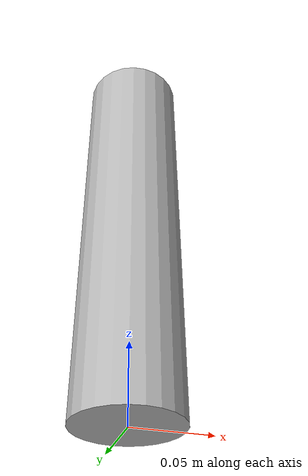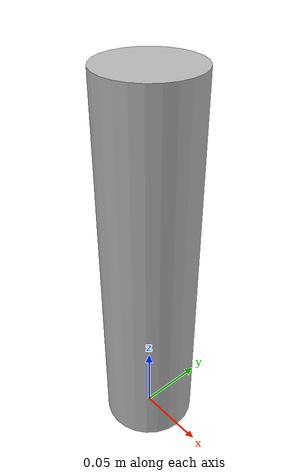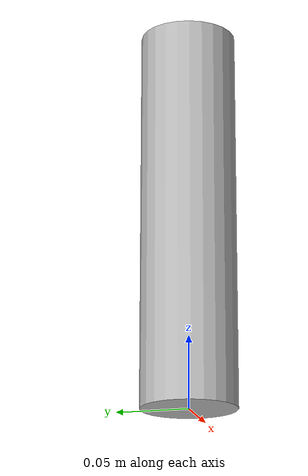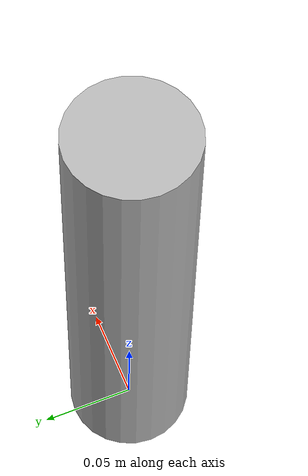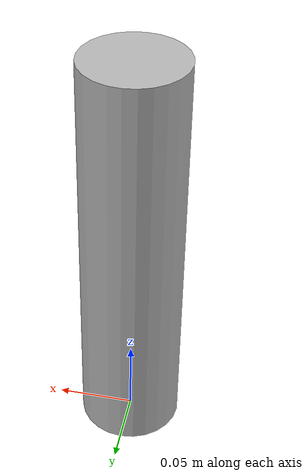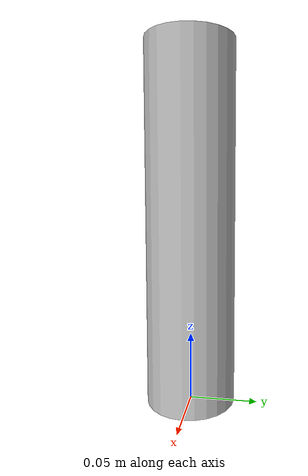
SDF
<?xml version="1.0" ?>
<sdf version='1.4'>
  <model name="pringles">
    <static>0</static>
    <link name="link">
      <pose>0 0 0.13335 0 0 0</pose>
      <inertial>
        <mass>0.20</mass>
        <inertia>
          <ixx>0.001258</ixx>
          <ixy>0</ixy>
          <ixz>0</ixz>
          <iyy>0.001258</iyy>
          <iyz>0</iyz>
          <izz>0.000145</izz>
        </inertia>
      </inertial>
      <collision name="collision">
        <geometry>
          <cylinder>
            <radius>0.03302</radius>
            <length>0.2667</length>
          </cylinder>
        </geometry>
        <surface>
          <friction>
            <ode>
              <mu>0.8</mu>
              <mu2>0.8</mu2>
              <fdir1>0.000000 0.000000 0.000000</fdir1>
              <slip1>0.000000</slip1>
              <slip2>0.000000</slip2>
            </ode>
          </friction>
          <contact>
            <ode>
              <kp>1000000.0</kp>
              <kd>1.0</kd>
              <max_vel>0.0</max_vel>
              <min_depth>0.0001</min_depth>
            </ode>
          </contact>
        </surface>
      </collision>
      <visual name="visual">
        <geometry>
          <cylinder>
            <radius>0.03302</radius>
            <length>0.2667</length>
          </cylinder>
        </geometry>
        <material>
          <script>
            <uri>model://pringles/materials/scripts</uri>
            <uri>model://pringles/materials/textures</uri>
            <name>pringles/Diffuse</name>
          </script>
        </material>
      </visual>
      <self_collide>0</self_collide>
      <kinematic>0</kinematic>
      <gravity>1</gravity>
    </link>
  </model>
</sdf>
